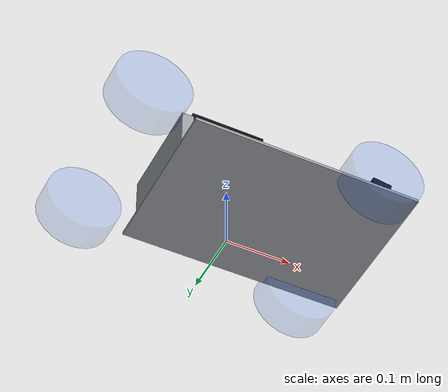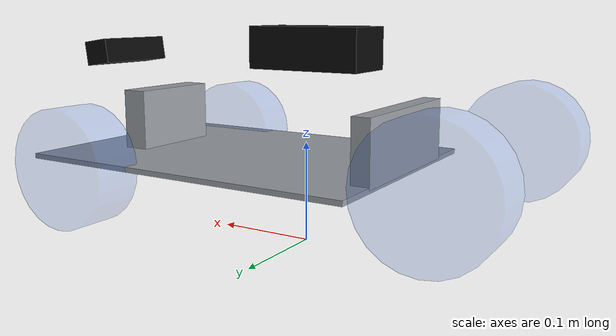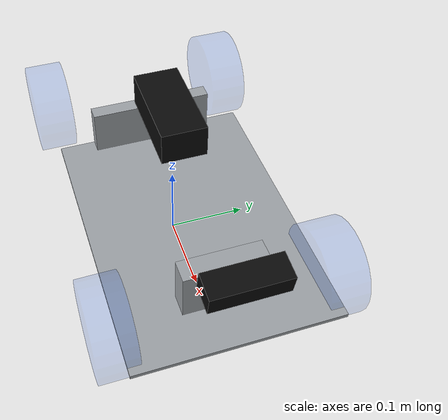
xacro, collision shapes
<?xml version="1.0"?>
<robot xmlns:xacro="http://www.ros.org/wiki/xacro" name="lunshi_chassis">

  <!-- Generated Xacro source. Final URDF is produced by xacro before robot_state_publisher / RViz / Gazebo. -->
  <xacro:arg name="use_gazebo" default="false"/>
  <xacro:arg name="use_gazebo_classic" default="false"/>
  <xacro:arg name="sim_controller_config" default=""/>

  <!-- Geometry measured from the user's current chassis URDF / meshes. Units: m, rad. -->
  <xacro:property name="wheelbase" value="0.362295943"/>
  <xacro:property name="steering_track_width" value="0.264956799"/>
  <xacro:property name="traction_track_width" value="0.245400019"/>
  <xacro:property name="wheel_radius" value="0.058528263"/>

  <!-- SLAMTEC RPLIDAR S3 simulation parameters from the user-provided datasheet. -->
  <xacro:property name="s3_update_rate" value="10"/>
  <xacro:property name="s3_samples" value="3200"/>
  <xacro:property name="s3_min_angle" value="-3.141592653589793"/>
  <xacro:property name="s3_max_angle" value="3.141592653589793"/>
  <xacro:property name="s3_min_range" value="0.05"/>
  <xacro:property name="s3_max_range" value="40.0"/>
  <xacro:property name="s3_range_resolution" value="0.01"/>
  <xacro:property name="s3_noise_stddev" value="0.025"/>

  <!-- HIKROBOT MV-DT01SDU simulation parameters from the user-provided datasheet. -->
  <xacro:property name="mv_depth_hfov" value="1.117010721276"/>
  <xacro:property name="mv_rgb_hfov" value="1.291543646476"/>
  <xacro:property name="mv_depth_width" value="640"/>
  <xacro:property name="mv_depth_height" value="480"/>
  <xacro:property name="mv_rgb_width" value="1536"/>
  <xacro:property name="mv_rgb_height" value="1280"/>
  <xacro:property name="mv_update_rate" value="30"/>
  <xacro:property name="mv_near" value="0.30"/>
  <xacro:property name="mv_far" value="3.50"/>

  <xacro:include filename="$(find omnifleet_a2_description)/urdf/gazebo_sensors.gazebo.xacro"/>
  <xacro:include filename="$(find omnifleet_a2_description)/urdf/gazebo_classic.gazebo.xacro"/>

  <material name="sensor_lens">
    <color rgba="0.0 0.0 0.0 1" />
  </material>
  <material name="sensor_dark">
    <color rgba="0.04 0.04 0.04 1" />
  </material>
  <material name="steering_link_material">
    <color rgba="0.12 0.12 0.12 1" />
  </material>
  <material name="mesh_default">
    <color rgba="0.62 0.64 0.66 1" />
  </material>
  <material name="wheel_black">
    <color rgba="0.02 0.02 0.02 1" />
  </material>
  <material name="wheel_global_ref">
    <color rgba="0.1 0.35 0.9 0.18" />
  </material>
  <link name="base_footprint" />
  <link name="imu_link" />
  <link name="base_link">
    <inertial>
      <origin xyz="0 0 0" rpy="0 0 0" />
      <mass value="4" />
      <inertia ixx="0.0206753333" ixy="0" ixz="0" iyy="0.0426104167" iyz="0" izz="0.0632690833" />
    </inertial>
    <collision name="base_plate">
      <origin xyz="0.0704405689 5.86852988e-08 0.023028263" rpy="0 0 0" />
      <geometry>
        <box size="0.3575 0.249 0.005" />
      </geometry>
    </collision>
    <collision name="rear_body">
      <origin xyz="-0.0993094311 5.86852988e-08 0.0535289029" rpy="0 0 0" />
      <geometry>
        <box size="0.0180068392 0.156002508 0.0610055594" />
      </geometry>
    </collision>
    <collision name="front_body">
      <origin xyz="0.181190569 5.8685295e-08 0.0550284244" rpy="0 0 0" />
      <geometry>
        <box size="0.0270002062 0.100000852 0.0640005289" />
      </geometry>
    </collision>
    <visual name="sw_part_001_3633009ae9">
      <origin xyz="0 0 0" rpy="0 0 0" />
      <geometry>
        <mesh filename="package://omnifleet_a2_description/meshes/sw_visual/sw_part_001_3633009ae9.stl" />
      </geometry>
      <material name="mesh_default" />
    </visual>
    <visual name="sw_part_002_e78aa04ea8">
      <origin xyz="0 0 0" rpy="0 0 0" />
      <geometry>
        <mesh filename="package://omnifleet_a2_description/meshes/sw_visual/sw_part_002_e78aa04ea8.stl" />
      </geometry>
      <material name="mesh_default" />
    </visual>
    <visual name="sw_part_003_7093eddc6d">
      <origin xyz="0 0 0" rpy="0 0 0" />
      <geometry>
        <mesh filename="package://omnifleet_a2_description/meshes/sw_visual/sw_part_003_7093eddc6d.stl" />
      </geometry>
      <material name="mesh_default" />
    </visual>
    <visual name="sw_part_004_13395ffafe">
      <origin xyz="0 0 0" rpy="0 0 0" />
      <geometry>
        <mesh filename="package://omnifleet_a2_description/meshes/sw_visual/sw_part_004_13395ffafe.stl" />
      </geometry>
      <material name="mesh_default" />
    </visual>
    <visual name="sw_part_005_8bcc7fc08d">
      <origin xyz="0 0 0" rpy="0 0 0" />
      <geometry>
        <mesh filename="package://omnifleet_a2_description/meshes/sw_visual/sw_part_005_8bcc7fc08d.stl" />
      </geometry>
      <material name="mesh_default" />
    </visual>
    <visual name="sw_part_006_0436e3fb28">
      <origin xyz="0 0 0" rpy="0 0 0" />
      <geometry>
        <mesh filename="package://omnifleet_a2_description/meshes/sw_visual/sw_part_006_0436e3fb28.stl" />
      </geometry>
      <material name="mesh_default" />
    </visual>
    <visual name="sw_part_007_d973dab162">
      <origin xyz="0 0 0" rpy="0 0 0" />
      <geometry>
        <mesh filename="package://omnifleet_a2_description/meshes/sw_visual/sw_part_007_d973dab162.stl" />
      </geometry>
      <material name="mesh_default" />
    </visual>
    <visual name="sw_part_008_93bc5c7974">
      <origin xyz="0 0 0" rpy="0 0 0" />
      <geometry>
        <mesh filename="package://omnifleet_a2_description/meshes/sw_visual/sw_part_008_93bc5c7974.stl" />
      </geometry>
      <material name="mesh_default" />
    </visual>
    <visual name="sw_part_009_bf2929afc5">
      <origin xyz="0 0 0" rpy="0 0 0" />
      <geometry>
        <mesh filename="package://omnifleet_a2_description/meshes/sw_visual/sw_part_009_bf2929afc5.stl" />
      </geometry>
      <material name="mesh_default" />
    </visual>
    <visual name="sw_part_010_53321976d9">
      <origin xyz="0 0 0" rpy="0 0 0" />
      <geometry>
        <mesh filename="package://omnifleet_a2_description/meshes/sw_visual/sw_part_010_53321976d9.stl" />
      </geometry>
      <material name="mesh_default" />
    </visual>
    <visual name="sw_part_011_256aa68fd6">
      <origin xyz="0 0 0" rpy="0 0 0" />
      <geometry>
        <mesh filename="package://omnifleet_a2_description/meshes/sw_visual/sw_part_011_256aa68fd6.stl" />
      </geometry>
      <material name="mesh_default" />
    </visual>
    <visual name="sw_part_012_aa55bd141e">
      <origin xyz="0 0 0" rpy="0 0 0" />
      <geometry>
        <mesh filename="package://omnifleet_a2_description/meshes/sw_visual/sw_part_012_aa55bd141e.stl" />
      </geometry>
      <material name="mesh_default" />
    </visual>
    <visual name="sw_part_013_17aef547ed">
      <origin xyz="0 0 0" rpy="0 0 0" />
      <geometry>
        <mesh filename="package://omnifleet_a2_description/meshes/sw_visual/sw_part_013_17aef547ed.stl" />
      </geometry>
      <material name="mesh_default" />
    </visual>
    <visual name="sw_part_014_9eefcaee3f">
      <origin xyz="0 0 0" rpy="0 0 0" />
      <geometry>
        <mesh filename="package://omnifleet_a2_description/meshes/sw_visual/sw_part_014_9eefcaee3f.stl" />
      </geometry>
      <material name="mesh_default" />
    </visual>
    <visual name="sw_part_015_72abcd5d28">
      <origin xyz="0 0 0" rpy="0 0 0" />
      <geometry>
        <mesh filename="package://omnifleet_a2_description/meshes/sw_visual/sw_part_015_72abcd5d28.stl" />
      </geometry>
      <material name="mesh_default" />
    </visual>
    <visual name="sw_part_016_9368eccf78">
      <origin xyz="0 0 0" rpy="0 0 0" />
      <geometry>
        <mesh filename="package://omnifleet_a2_description/meshes/sw_visual/sw_part_016_9368eccf78.stl" />
      </geometry>
      <material name="mesh_default" />
    </visual>
    <visual name="sw_part_017_61eb6a460b">
      <origin xyz="0 0 0" rpy="0 0 0" />
      <geometry>
        <mesh filename="package://omnifleet_a2_description/meshes/sw_visual/sw_part_017_61eb6a460b.stl" />
      </geometry>
      <material name="mesh_default" />
    </visual>
    <visual name="sw_part_018_815a708bf5">
      <origin xyz="0 0 0" rpy="0 0 0" />
      <geometry>
        <mesh filename="package://omnifleet_a2_description/meshes/sw_visual/sw_part_018_815a708bf5.stl" />
      </geometry>
      <material name="mesh_default" />
    </visual>
    <visual name="sw_part_019_9910a8fb2c">
      <origin xyz="0 0 0" rpy="0 0 0" />
      <geometry>
        <mesh filename="package://omnifleet_a2_description/meshes/sw_visual/sw_part_019_9910a8fb2c.stl" />
      </geometry>
      <material name="mesh_default" />
    </visual>
    <visual name="sw_part_020_aae9db7bbc">
      <origin xyz="0 0 0" rpy="0 0 0" />
      <geometry>
        <mesh filename="package://omnifleet_a2_description/meshes/sw_visual/sw_part_020_aae9db7bbc.stl" />
      </geometry>
      <material name="mesh_default" />
    </visual>
    <visual name="sw_part_021_a5becf8b4b">
      <origin xyz="0 0 0" rpy="0 0 0" />
      <geometry>
        <mesh filename="package://omnifleet_a2_description/meshes/sw_visual/sw_part_021_a5becf8b4b.stl" />
      </geometry>
      <material name="mesh_default" />
    </visual>
    <visual name="sw_part_022_ebe636baef">
      <origin xyz="0 0 0" rpy="0 0 0" />
      <geometry>
        <mesh filename="package://omnifleet_a2_description/meshes/sw_visual/sw_part_022_ebe636baef.stl" />
      </geometry>
      <material name="mesh_default" />
    </visual>
    <visual name="sw_part_023_b2d48b0e61">
      <origin xyz="0 0 0" rpy="0 0 0" />
      <geometry>
        <mesh filename="package://omnifleet_a2_description/meshes/sw_visual/sw_part_023_b2d48b0e61.stl" />
      </geometry>
      <material name="mesh_default" />
    </visual>
    <visual name="sw_part_024_337649c364">
      <origin xyz="0 0 0" rpy="0 0 0" />
      <geometry>
        <mesh filename="package://omnifleet_a2_description/meshes/sw_visual/sw_part_024_337649c364.stl" />
      </geometry>
      <material name="mesh_default" />
    </visual>
    <visual name="sw_part_025_b188110bb0">
      <origin xyz="0 0 0" rpy="0 0 0" />
      <geometry>
        <mesh filename="package://omnifleet_a2_description/meshes/sw_visual/sw_part_025_b188110bb0.stl" />
      </geometry>
      <material name="mesh_default" />
    </visual>
    <visual name="sw_part_026_1409ff7399">
      <origin xyz="0 0 0" rpy="0 0 0" />
      <geometry>
        <mesh filename="package://omnifleet_a2_description/meshes/sw_visual/sw_part_026_1409ff7399.stl" />
      </geometry>
      <material name="mesh_default" />
    </visual>
    <visual name="sw_part_027_155776a776">
      <origin xyz="0 0 0" rpy="0 0 0" />
      <geometry>
        <mesh filename="package://omnifleet_a2_description/meshes/sw_visual/sw_part_027_155776a776.stl" />
      </geometry>
      <material name="mesh_default" />
    </visual>
    <visual name="sw_part_028_71e5d6d001">
      <origin xyz="0 0 0" rpy="0 0 0" />
      <geometry>
        <mesh filename="package://omnifleet_a2_description/meshes/sw_visual/sw_part_028_71e5d6d001.stl" />
      </geometry>
      <material name="mesh_default" />
    </visual>
    <visual name="sw_part_029_1eaf383dc2">
      <origin xyz="0 0 0" rpy="0 0 0" />
      <geometry>
        <mesh filename="package://omnifleet_a2_description/meshes/sw_visual/sw_part_029_1eaf383dc2.stl" />
      </geometry>
      <material name="mesh_default" />
    </visual>
    <visual name="sw_part_030_aa3c489f27">
      <origin xyz="0 0 0" rpy="0 0 0" />
      <geometry>
        <mesh filename="package://omnifleet_a2_description/meshes/sw_visual/sw_part_030_aa3c489f27.stl" />
      </geometry>
      <material name="mesh_default" />
    </visual>
    <visual name="sw_part_031_46ed68528e">
      <origin xyz="0 0 0" rpy="0 0 0" />
      <geometry>
        <mesh filename="package://omnifleet_a2_description/meshes/sw_visual/sw_part_031_46ed68528e.stl" />
      </geometry>
      <material name="mesh_default" />
    </visual>
    <visual name="sw_part_032_419e96348e">
      <origin xyz="0 0 0" rpy="0 0 0" />
      <geometry>
        <mesh filename="package://omnifleet_a2_description/meshes/sw_visual/sw_part_032_419e96348e.stl" />
      </geometry>
      <material name="mesh_default" />
    </visual>
    <visual name="sw_part_033_02904175a3">
      <origin xyz="0 0 0" rpy="0 0 0" />
      <geometry>
        <mesh filename="package://omnifleet_a2_description/meshes/sw_visual/sw_part_033_02904175a3.stl" />
      </geometry>
      <material name="mesh_default" />
    </visual>
    <visual name="sw_part_034_92e8e3e31d">
      <origin xyz="0 0 0" rpy="0 0 0" />
      <geometry>
        <mesh filename="package://omnifleet_a2_description/meshes/sw_visual/sw_part_034_92e8e3e31d.stl" />
      </geometry>
      <material name="mesh_default" />
    </visual>
    <visual name="sw_part_035_3c44a1765f">
      <origin xyz="0 0 0" rpy="0 0 0" />
      <geometry>
        <mesh filename="package://omnifleet_a2_description/meshes/sw_visual/sw_part_035_3c44a1765f.stl" />
      </geometry>
      <material name="mesh_default" />
    </visual>
    <visual name="sw_part_036_5fac2b219a">
      <origin xyz="0 0 0" rpy="0 0 0" />
      <geometry>
        <mesh filename="package://omnifleet_a2_description/meshes/sw_visual/sw_part_036_5fac2b219a.stl" />
      </geometry>
      <material name="mesh_default" />
    </visual>
    <visual name="sw_part_037_e28a596db6">
      <origin xyz="0 0 0" rpy="0 0 0" />
      <geometry>
        <mesh filename="package://omnifleet_a2_description/meshes/sw_visual/sw_part_037_e28a596db6.stl" />
      </geometry>
      <material name="mesh_default" />
    </visual>
    <visual name="sw_part_038_6dec9e4d2a">
      <origin xyz="0 0 0" rpy="0 0 0" />
      <geometry>
        <mesh filename="package://omnifleet_a2_description/meshes/sw_visual/sw_part_038_6dec9e4d2a.stl" />
      </geometry>
      <material name="mesh_default" />
    </visual>
    <visual name="sw_part_039_8f85688579">
      <origin xyz="0 0 0" rpy="0 0 0" />
      <geometry>
        <mesh filename="package://omnifleet_a2_description/meshes/sw_visual/sw_part_039_8f85688579.stl" />
      </geometry>
      <material name="mesh_default" />
    </visual>
    <visual name="sw_part_040_08e9188483">
      <origin xyz="0 0 0" rpy="0 0 0" />
      <geometry>
        <mesh filename="package://omnifleet_a2_description/meshes/sw_visual/sw_part_040_08e9188483.stl" />
      </geometry>
      <material name="mesh_default" />
    </visual>
    <visual name="sw_part_041_eff6a963a1">
      <origin xyz="0 0 0" rpy="0 0 0" />
      <geometry>
        <mesh filename="package://omnifleet_a2_description/meshes/sw_visual/sw_part_041_eff6a963a1.stl" />
      </geometry>
      <material name="mesh_default" />
    </visual>
    <visual name="sw_part_042_4d64970562">
      <origin xyz="0 0 0" rpy="0 0 0" />
      <geometry>
        <mesh filename="package://omnifleet_a2_description/meshes/sw_visual/sw_part_042_4d64970562.stl" />
      </geometry>
      <material name="mesh_default" />
    </visual>
    <visual name="sw_part_043_210c324f57">
      <origin xyz="0 0 0" rpy="0 0 0" />
      <geometry>
        <mesh filename="package://omnifleet_a2_description/meshes/sw_visual/sw_part_043_210c324f57.stl" />
      </geometry>
      <material name="mesh_default" />
    </visual>
    <visual name="sw_part_044_414139380e">
      <origin xyz="0 0 0" rpy="0 0 0" />
      <geometry>
        <mesh filename="package://omnifleet_a2_description/meshes/sw_visual/sw_part_044_414139380e.stl" />
      </geometry>
      <material name="mesh_default" />
    </visual>
    <visual name="sw_part_045_497b2b4815">
      <origin xyz="0 0 0" rpy="0 0 0" />
      <geometry>
        <mesh filename="package://omnifleet_a2_description/meshes/sw_visual/sw_part_045_497b2b4815.stl" />
      </geometry>
      <material name="mesh_default" />
    </visual>
    <visual name="sw_part_046_e3333587eb">
      <origin xyz="0 0 0" rpy="0 0 0" />
      <geometry>
        <mesh filename="package://omnifleet_a2_description/meshes/sw_visual/sw_part_046_e3333587eb.stl" />
      </geometry>
      <material name="mesh_default" />
    </visual>
    <visual name="sw_part_047_cb0820ef77">
      <origin xyz="0 0 0" rpy="0 0 0" />
      <geometry>
        <mesh filename="package://omnifleet_a2_description/meshes/sw_visual/sw_part_047_cb0820ef77.stl" />
      </geometry>
      <material name="mesh_default" />
    </visual>
    <visual name="sw_part_048_b15e918a37">
      <origin xyz="0 0 0" rpy="0 0 0" />
      <geometry>
        <mesh filename="package://omnifleet_a2_description/meshes/sw_visual/sw_part_048_b15e918a37.stl" />
      </geometry>
      <material name="mesh_default" />
    </visual>
    <visual name="sw_part_049_54856056a7">
      <origin xyz="0 0 0" rpy="0 0 0" />
      <geometry>
        <mesh filename="package://omnifleet_a2_description/meshes/sw_visual/sw_part_049_54856056a7.stl" />
      </geometry>
      <material name="mesh_default" />
    </visual>
    <visual name="sw_part_050_4c418e1331">
      <origin xyz="0 0 0" rpy="0 0 0" />
      <geometry>
        <mesh filename="package://omnifleet_a2_description/meshes/sw_visual/sw_part_050_4c418e1331.stl" />
      </geometry>
      <material name="mesh_default" />
    </visual>
    <visual name="sw_part_051_59924a821f">
      <origin xyz="0 0 0" rpy="0 0 0" />
      <geometry>
        <mesh filename="package://omnifleet_a2_description/meshes/sw_visual/sw_part_051_59924a821f.stl" />
      </geometry>
      <material name="mesh_default" />
    </visual>
    <visual name="sw_part_052_315692d405">
      <origin xyz="0 0 0" rpy="0 0 0" />
      <geometry>
        <mesh filename="package://omnifleet_a2_description/meshes/sw_visual/sw_part_052_315692d405.stl" />
      </geometry>
      <material name="mesh_default" />
    </visual>
    <visual name="sw_part_053_1427eadb00">
      <origin xyz="0 0 0" rpy="0 0 0" />
      <geometry>
        <mesh filename="package://omnifleet_a2_description/meshes/sw_visual/sw_part_053_1427eadb00.stl" />
      </geometry>
      <material name="mesh_default" />
    </visual>
    <visual name="sw_part_054_bb60f7b185">
      <origin xyz="0 0 0" rpy="0 0 0" />
      <geometry>
        <mesh filename="package://omnifleet_a2_description/meshes/sw_visual/sw_part_054_bb60f7b185.stl" />
      </geometry>
      <material name="mesh_default" />
    </visual>
    <visual name="sw_part_055_ee13952fb0">
      <origin xyz="0 0 0" rpy="0 0 0" />
      <geometry>
        <mesh filename="package://omnifleet_a2_description/meshes/sw_visual/sw_part_055_ee13952fb0.stl" />
      </geometry>
      <material name="mesh_default" />
    </visual>
    <visual name="sw_part_056_dd8379ab7c">
      <origin xyz="0 0 0" rpy="0 0 0" />
      <geometry>
        <mesh filename="package://omnifleet_a2_description/meshes/sw_visual/sw_part_056_dd8379ab7c.stl" />
      </geometry>
      <material name="mesh_default" />
    </visual>
    <visual name="sw_part_057_75450c2ac9">
      <origin xyz="0 0 0" rpy="0 0 0" />
      <geometry>
        <mesh filename="package://omnifleet_a2_description/meshes/sw_visual/sw_part_057_75450c2ac9.stl" />
      </geometry>
      <material name="mesh_default" />
    </visual>
    <visual name="sw_part_058_241afe2013">
      <origin xyz="0 0 0" rpy="0 0 0" />
      <geometry>
        <mesh filename="package://omnifleet_a2_description/meshes/sw_visual/sw_part_058_241afe2013.stl" />
      </geometry>
      <material name="mesh_default" />
    </visual>
    <visual name="sw_part_059_b378922962">
      <origin xyz="0 0 0" rpy="0 0 0" />
      <geometry>
        <mesh filename="package://omnifleet_a2_description/meshes/sw_visual/sw_part_059_b378922962.stl" />
      </geometry>
      <material name="mesh_default" />
    </visual>
    <visual name="sw_part_060_a1836be0ab">
      <origin xyz="0 0 0" rpy="0 0 0" />
      <geometry>
        <mesh filename="package://omnifleet_a2_description/meshes/sw_visual/sw_part_060_a1836be0ab.stl" />
      </geometry>
      <material name="mesh_default" />
    </visual>
    <visual name="sw_part_061_875163776c">
      <origin xyz="0 0 0" rpy="0 0 0" />
      <geometry>
        <mesh filename="package://omnifleet_a2_description/meshes/sw_visual/sw_part_061_875163776c.stl" />
      </geometry>
      <material name="mesh_default" />
    </visual>
    <visual name="sw_part_062_95bc4b61c2">
      <origin xyz="0 0 0" rpy="0 0 0" />
      <geometry>
        <mesh filename="package://omnifleet_a2_description/meshes/sw_visual/sw_part_062_95bc4b61c2.stl" />
      </geometry>
      <material name="mesh_default" />
    </visual>
    <visual name="sw_part_063_5e6e8604b6">
      <origin xyz="0 0 0" rpy="0 0 0" />
      <geometry>
        <mesh filename="package://omnifleet_a2_description/meshes/sw_visual/sw_part_063_5e6e8604b6.stl" />
      </geometry>
      <material name="mesh_default" />
    </visual>
    <visual name="sw_part_064_b797b5864f">
      <origin xyz="0 0 0" rpy="0 0 0" />
      <geometry>
        <mesh filename="package://omnifleet_a2_description/meshes/sw_visual/sw_part_064_b797b5864f.stl" />
      </geometry>
      <material name="mesh_default" />
    </visual>
    <visual name="sw_part_065_b9dfb744ae">
      <origin xyz="0 0 0" rpy="0 0 0" />
      <geometry>
        <mesh filename="package://omnifleet_a2_description/meshes/sw_visual/sw_part_065_b9dfb744ae.stl" />
      </geometry>
      <material name="mesh_default" />
    </visual>
    <visual name="sw_part_066_f90ceb3043">
      <origin xyz="0 0 0" rpy="0 0 0" />
      <geometry>
        <mesh filename="package://omnifleet_a2_description/meshes/sw_visual/sw_part_066_f90ceb3043.stl" />
      </geometry>
      <material name="mesh_default" />
    </visual>
    <visual name="sw_part_067_4960ed1dfe">
      <origin xyz="0 0 0" rpy="0 0 0" />
      <geometry>
        <mesh filename="package://omnifleet_a2_description/meshes/sw_visual/sw_part_067_4960ed1dfe.stl" />
      </geometry>
      <material name="mesh_default" />
    </visual>
    <visual name="sw_part_068_494e96827b">
      <origin xyz="0 0 0" rpy="0 0 0" />
      <geometry>
        <mesh filename="package://omnifleet_a2_description/meshes/sw_visual/sw_part_068_494e96827b.stl" />
      </geometry>
      <material name="mesh_default" />
    </visual>
    <visual name="sw_part_069_e01440c7e6">
      <origin xyz="0 0 0" rpy="0 0 0" />
      <geometry>
        <mesh filename="package://omnifleet_a2_description/meshes/sw_visual/sw_part_069_e01440c7e6.stl" />
      </geometry>
      <material name="mesh_default" />
    </visual>
    <visual name="sw_part_070_9790d972c8">
      <origin xyz="0 0 0" rpy="0 0 0" />
      <geometry>
        <mesh filename="package://omnifleet_a2_description/meshes/sw_visual/sw_part_070_9790d972c8.stl" />
      </geometry>
      <material name="mesh_default" />
    </visual>
    <visual name="sw_part_071_3946ce0f16">
      <origin xyz="0 0 0" rpy="0 0 0" />
      <geometry>
        <mesh filename="package://omnifleet_a2_description/meshes/sw_visual/sw_part_071_3946ce0f16.stl" />
      </geometry>
      <material name="mesh_default" />
    </visual>
    <visual name="sw_part_072_f00236c269">
      <origin xyz="0 0 0" rpy="0 0 0" />
      <geometry>
        <mesh filename="package://omnifleet_a2_description/meshes/sw_visual/sw_part_072_f00236c269.stl" />
      </geometry>
      <material name="mesh_default" />
    </visual>
    <visual name="sw_part_073_f65041677a">
      <origin xyz="0 0 0" rpy="0 0 0" />
      <geometry>
        <mesh filename="package://omnifleet_a2_description/meshes/sw_visual/sw_part_073_f65041677a.stl" />
      </geometry>
      <material name="mesh_default" />
    </visual>
    <visual name="sw_part_074_99cca69f99">
      <origin xyz="0 0 0" rpy="0 0 0" />
      <geometry>
        <mesh filename="package://omnifleet_a2_description/meshes/sw_visual/sw_part_074_99cca69f99.stl" />
      </geometry>
      <material name="mesh_default" />
    </visual>
    <visual name="sw_part_075_c6fb581a2e">
      <origin xyz="0 0 0" rpy="0 0 0" />
      <geometry>
        <mesh filename="package://omnifleet_a2_description/meshes/sw_visual/sw_part_075_c6fb581a2e.stl" />
      </geometry>
      <material name="mesh_default" />
    </visual>
    <visual name="sw_part_076_2ef7cbc025">
      <origin xyz="0 0 0" rpy="0 0 0" />
      <geometry>
        <mesh filename="package://omnifleet_a2_description/meshes/sw_visual/sw_part_076_2ef7cbc025.stl" />
      </geometry>
      <material name="mesh_default" />
    </visual>
    <visual name="sw_part_077_8ab4f19a9f">
      <origin xyz="0 0 0" rpy="0 0 0" />
      <geometry>
        <mesh filename="package://omnifleet_a2_description/meshes/sw_visual/sw_part_077_8ab4f19a9f.stl" />
      </geometry>
      <material name="mesh_default" />
    </visual>
    <visual name="sw_part_078_f29b3855cc">
      <origin xyz="0 0 0" rpy="0 0 0" />
      <geometry>
        <mesh filename="package://omnifleet_a2_description/meshes/sw_visual/sw_part_078_f29b3855cc.stl" />
      </geometry>
      <material name="mesh_default" />
    </visual>
    <visual name="sw_part_079_50338ffdfe">
      <origin xyz="0 0 0" rpy="0 0 0" />
      <geometry>
        <mesh filename="package://omnifleet_a2_description/meshes/sw_visual/sw_part_079_50338ffdfe.stl" />
      </geometry>
      <material name="mesh_default" />
    </visual>
    <visual name="sw_part_080_3dd1e5d638">
      <origin xyz="0 0 0" rpy="0 0 0" />
      <geometry>
        <mesh filename="package://omnifleet_a2_description/meshes/sw_visual/sw_part_080_3dd1e5d638.stl" />
      </geometry>
      <material name="mesh_default" />
    </visual>
    <visual name="sw_part_081_e386a33bcf">
      <origin xyz="0 0 0" rpy="0 0 0" />
      <geometry>
        <mesh filename="package://omnifleet_a2_description/meshes/sw_visual/sw_part_081_e386a33bcf.stl" />
      </geometry>
      <material name="mesh_default" />
    </visual>
    <visual name="sw_part_082_7344fba58f">
      <origin xyz="0 0 0" rpy="0 0 0" />
      <geometry>
        <mesh filename="package://omnifleet_a2_description/meshes/sw_visual/sw_part_082_7344fba58f.stl" />
      </geometry>
      <material name="mesh_default" />
    </visual>
    <visual name="sw_part_083_baebf5504c">
      <origin xyz="0 0 0" rpy="0 0 0" />
      <geometry>
        <mesh filename="package://omnifleet_a2_description/meshes/sw_visual/sw_part_083_baebf5504c.stl" />
      </geometry>
      <material name="mesh_default" />
    </visual>
    <visual name="sw_part_084_9f5cd90b97">
      <origin xyz="0 0 0" rpy="0 0 0" />
      <geometry>
        <mesh filename="package://omnifleet_a2_description/meshes/sw_visual/sw_part_084_9f5cd90b97.stl" />
      </geometry>
      <material name="mesh_default" />
    </visual>
    <visual name="sw_part_085_0f0495f53f">
      <origin xyz="0 0 0" rpy="0 0 0" />
      <geometry>
        <mesh filename="package://omnifleet_a2_description/meshes/sw_visual/sw_part_085_0f0495f53f.stl" />
      </geometry>
      <material name="mesh_default" />
    </visual>
    <visual name="sw_part_086_98dd27a233">
      <origin xyz="0 0 0" rpy="0 0 0" />
      <geometry>
        <mesh filename="package://omnifleet_a2_description/meshes/sw_visual/sw_part_086_98dd27a233.stl" />
      </geometry>
      <material name="mesh_default" />
    </visual>
    <visual name="sw_part_087_3a09e0b472">
      <origin xyz="0 0 0" rpy="0 0 0" />
      <geometry>
        <mesh filename="package://omnifleet_a2_description/meshes/sw_visual/sw_part_087_3a09e0b472.stl" />
      </geometry>
      <material name="mesh_default" />
    </visual>
    <visual name="sw_part_088_a925b230d2">
      <origin xyz="0 0 0" rpy="0 0 0" />
      <geometry>
        <mesh filename="package://omnifleet_a2_description/meshes/sw_visual/sw_part_088_a925b230d2.stl" />
      </geometry>
      <material name="mesh_default" />
    </visual>
    <visual name="sw_part_089_ffaa3a32e0">
      <origin xyz="0 0 0" rpy="0 0 0" />
      <geometry>
        <mesh filename="package://omnifleet_a2_description/meshes/sw_visual/sw_part_089_ffaa3a32e0.stl" />
      </geometry>
      <material name="mesh_default" />
    </visual>
    <visual name="sw_part_090_554b1ba990">
      <origin xyz="0 0 0" rpy="0 0 0" />
      <geometry>
        <mesh filename="package://omnifleet_a2_description/meshes/sw_visual/sw_part_090_554b1ba990.stl" />
      </geometry>
      <material name="mesh_default" />
    </visual>
    <visual name="sw_part_091_6e132a8fcd">
      <origin xyz="0 0 0" rpy="0 0 0" />
      <geometry>
        <mesh filename="package://omnifleet_a2_description/meshes/sw_visual/sw_part_091_6e132a8fcd.stl" />
      </geometry>
      <material name="mesh_default" />
    </visual>
    <visual name="sw_part_092_a2ff41fbee">
      <origin xyz="0 0 0" rpy="0 0 0" />
      <geometry>
        <mesh filename="package://omnifleet_a2_description/meshes/sw_visual/sw_part_092_a2ff41fbee.stl" />
      </geometry>
      <material name="mesh_default" />
    </visual>
    <visual name="sw_part_093_ebd61c1eda">
      <origin xyz="0 0 0" rpy="0 0 0" />
      <geometry>
        <mesh filename="package://omnifleet_a2_description/meshes/sw_visual/sw_part_093_ebd61c1eda.stl" />
      </geometry>
      <material name="mesh_default" />
    </visual>
    <visual name="sw_part_094_2040a775ee">
      <origin xyz="0 0 0" rpy="0 0 0" />
      <geometry>
        <mesh filename="package://omnifleet_a2_description/meshes/sw_visual/sw_part_094_2040a775ee.stl" />
      </geometry>
      <material name="mesh_default" />
    </visual>
    <visual name="sw_part_095_c2a6eb4d35">
      <origin xyz="0 0 0" rpy="0 0 0" />
      <geometry>
        <mesh filename="package://omnifleet_a2_description/meshes/sw_visual/sw_part_095_c2a6eb4d35.stl" />
      </geometry>
      <material name="mesh_default" />
    </visual>
    <visual name="sw_part_096_ba34ec172e">
      <origin xyz="0 0 0" rpy="0 0 0" />
      <geometry>
        <mesh filename="package://omnifleet_a2_description/meshes/sw_visual/sw_part_096_ba34ec172e.stl" />
      </geometry>
      <material name="mesh_default" />
    </visual>
    <visual name="sw_part_097_5483977b10">
      <origin xyz="0 0 0" rpy="0 0 0" />
      <geometry>
        <mesh filename="package://omnifleet_a2_description/meshes/sw_visual/sw_part_097_5483977b10.stl" />
      </geometry>
      <material name="mesh_default" />
    </visual>
    <visual name="sw_part_098_61af5a340a">
      <origin xyz="0 0 0" rpy="0 0 0" />
      <geometry>
        <mesh filename="package://omnifleet_a2_description/meshes/sw_visual/sw_part_098_61af5a340a.stl" />
      </geometry>
      <material name="mesh_default" />
    </visual>
    <visual name="sw_part_099_4a2af07b31">
      <origin xyz="0 0 0" rpy="0 0 0" />
      <geometry>
        <mesh filename="package://omnifleet_a2_description/meshes/sw_visual/sw_part_099_4a2af07b31.stl" />
      </geometry>
      <material name="mesh_default" />
    </visual>
    <visual name="sw_part_100_c18da94fe0">
      <origin xyz="0 0 0" rpy="0 0 0" />
      <geometry>
        <mesh filename="package://omnifleet_a2_description/meshes/sw_visual/sw_part_100_c18da94fe0.stl" />
      </geometry>
      <material name="mesh_default" />
    </visual>
    <visual name="sw_part_101_bf43f77761">
      <origin xyz="0 0 0" rpy="0 0 0" />
      <geometry>
        <mesh filename="package://omnifleet_a2_description/meshes/sw_visual/sw_part_101_bf43f77761.stl" />
      </geometry>
      <material name="mesh_default" />
    </visual>
    <visual name="sw_part_102_0da7334ee2">
      <origin xyz="0 0 0" rpy="0 0 0" />
      <geometry>
        <mesh filename="package://omnifleet_a2_description/meshes/sw_visual/sw_part_102_0da7334ee2.stl" />
      </geometry>
      <material name="mesh_default" />
    </visual>
    <visual name="sw_part_103_0385f5ca04">
      <origin xyz="0 0 0" rpy="0 0 0" />
      <geometry>
        <mesh filename="package://omnifleet_a2_description/meshes/sw_visual/sw_part_103_0385f5ca04.stl" />
      </geometry>
      <material name="mesh_default" />
    </visual>
    <visual name="sw_part_104_8ba5002a07">
      <origin xyz="0 0 0" rpy="0 0 0" />
      <geometry>
        <mesh filename="package://omnifleet_a2_description/meshes/sw_visual/sw_part_104_8ba5002a07.stl" />
      </geometry>
      <material name="mesh_default" />
    </visual>
    <visual name="sw_part_105_13c55a0a99">
      <origin xyz="0 0 0" rpy="0 0 0" />
      <geometry>
        <mesh filename="package://omnifleet_a2_description/meshes/sw_visual/sw_part_105_13c55a0a99.stl" />
      </geometry>
      <material name="mesh_default" />
    </visual>
    <visual name="sw_part_106_3dbe6b2f31">
      <origin xyz="0 0 0" rpy="0 0 0" />
      <geometry>
        <mesh filename="package://omnifleet_a2_description/meshes/sw_visual/sw_part_106_3dbe6b2f31.stl" />
      </geometry>
      <material name="mesh_default" />
    </visual>
    <visual name="sw_part_107_db2979320c">
      <origin xyz="0 0 0" rpy="0 0 0" />
      <geometry>
        <mesh filename="package://omnifleet_a2_description/meshes/sw_visual/sw_part_107_db2979320c.stl" />
      </geometry>
      <material name="mesh_default" />
    </visual>
    <visual name="sw_part_108_3d23ddd0d0">
      <origin xyz="0 0 0" rpy="0 0 0" />
      <geometry>
        <mesh filename="package://omnifleet_a2_description/meshes/sw_visual/sw_part_108_3d23ddd0d0.stl" />
      </geometry>
      <material name="mesh_default" />
    </visual>
    <visual name="sw_part_109_6de6e25646">
      <origin xyz="0 0 0" rpy="0 0 0" />
      <geometry>
        <mesh filename="package://omnifleet_a2_description/meshes/sw_visual/sw_part_109_6de6e25646.stl" />
      </geometry>
      <material name="mesh_default" />
    </visual>
    <visual name="sw_part_110_46de95b063">
      <origin xyz="0 0 0" rpy="0 0 0" />
      <geometry>
        <mesh filename="package://omnifleet_a2_description/meshes/sw_visual/sw_part_110_46de95b063.stl" />
      </geometry>
      <material name="mesh_default" />
    </visual>
    <visual name="sw_part_111_c47a558b07">
      <origin xyz="0 0 0" rpy="0 0 0" />
      <geometry>
        <mesh filename="package://omnifleet_a2_description/meshes/sw_visual/sw_part_111_c47a558b07.stl" />
      </geometry>
      <material name="mesh_default" />
    </visual>
    <visual name="sw_part_112_f708e15556">
      <origin xyz="0 0 0" rpy="0 0 0" />
      <geometry>
        <mesh filename="package://omnifleet_a2_description/meshes/sw_visual/sw_part_112_f708e15556.stl" />
      </geometry>
      <material name="mesh_default" />
    </visual>
    <visual name="sw_part_113_50c33979d3">
      <origin xyz="0 0 0" rpy="0 0 0" />
      <geometry>
        <mesh filename="package://omnifleet_a2_description/meshes/sw_visual/sw_part_113_50c33979d3.stl" />
      </geometry>
      <material name="mesh_default" />
    </visual>
    <visual name="sw_part_114_7b0f8198d6">
      <origin xyz="0 0 0" rpy="0 0 0" />
      <geometry>
        <mesh filename="package://omnifleet_a2_description/meshes/sw_visual/sw_part_114_7b0f8198d6.stl" />
      </geometry>
      <material name="mesh_default" />
    </visual>
    <visual name="sw_part_115_ff905dbdd2">
      <origin xyz="0 0 0" rpy="0 0 0" />
      <geometry>
        <mesh filename="package://omnifleet_a2_description/meshes/sw_visual/sw_part_115_ff905dbdd2.stl" />
      </geometry>
      <material name="mesh_default" />
    </visual>
    <visual name="sw_part_116_143e459fd5">
      <origin xyz="0 0 0" rpy="0 0 0" />
      <geometry>
        <mesh filename="package://omnifleet_a2_description/meshes/sw_visual/sw_part_116_143e459fd5.stl" />
      </geometry>
      <material name="mesh_default" />
    </visual>
    <visual name="sw_part_117_064a700624">
      <origin xyz="0 0 0" rpy="0 0 0" />
      <geometry>
        <mesh filename="package://omnifleet_a2_description/meshes/sw_visual/sw_part_117_064a700624.stl" />
      </geometry>
      <material name="mesh_default" />
    </visual>
    <visual name="sw_part_118_56982bf144">
      <origin xyz="0 0 0" rpy="0 0 0" />
      <geometry>
        <mesh filename="package://omnifleet_a2_description/meshes/sw_visual/sw_part_118_56982bf144.stl" />
      </geometry>
      <material name="mesh_default" />
    </visual>
    <visual name="sw_part_119_8e8dd7bb00">
      <origin xyz="0 0 0" rpy="0 0 0" />
      <geometry>
        <mesh filename="package://omnifleet_a2_description/meshes/sw_visual/sw_part_119_8e8dd7bb00.stl" />
      </geometry>
      <material name="mesh_default" />
    </visual>
    <visual name="sw_part_120_117b21ea04">
      <origin xyz="0 0 0" rpy="0 0 0" />
      <geometry>
        <mesh filename="package://omnifleet_a2_description/meshes/sw_visual/sw_part_120_117b21ea04.stl" />
      </geometry>
      <material name="mesh_default" />
    </visual>
    <visual name="sw_part_121_620a57d38b">
      <origin xyz="0 0 0" rpy="0 0 0" />
      <geometry>
        <mesh filename="package://omnifleet_a2_description/meshes/sw_visual/sw_part_121_620a57d38b.stl" />
      </geometry>
      <material name="mesh_default" />
    </visual>
    <visual name="sw_part_122_43a7b18ace">
      <origin xyz="0 0 0" rpy="0 0 0" />
      <geometry>
        <mesh filename="package://omnifleet_a2_description/meshes/sw_visual/sw_part_122_43a7b18ace.stl" />
      </geometry>
      <material name="mesh_default" />
    </visual>
    <visual name="sw_part_123_825175e0a4">
      <origin xyz="0 0 0" rpy="0 0 0" />
      <geometry>
        <mesh filename="package://omnifleet_a2_description/meshes/sw_visual/sw_part_123_825175e0a4.stl" />
      </geometry>
      <material name="mesh_default" />
    </visual>
    <visual name="sw_part_124_0eb23537be">
      <origin xyz="0 0 0" rpy="0 0 0" />
      <geometry>
        <mesh filename="package://omnifleet_a2_description/meshes/sw_visual/sw_part_124_0eb23537be.stl" />
      </geometry>
      <material name="mesh_default" />
    </visual>
    <visual name="sw_part_125_4f73546776">
      <origin xyz="0 0 0" rpy="0 0 0" />
      <geometry>
        <mesh filename="package://omnifleet_a2_description/meshes/sw_visual/sw_part_125_4f73546776.stl" />
      </geometry>
      <material name="mesh_default" />
    </visual>
    <visual name="sw_part_126_e77f43f857">
      <origin xyz="0 0 0" rpy="0 0 0" />
      <geometry>
        <mesh filename="package://omnifleet_a2_description/meshes/sw_visual/sw_part_126_e77f43f857.stl" />
      </geometry>
      <material name="mesh_default" />
    </visual>
    <visual name="sw_part_127_eb044ff075">
      <origin xyz="0 0 0" rpy="0 0 0" />
      <geometry>
        <mesh filename="package://omnifleet_a2_description/meshes/sw_visual/sw_part_127_eb044ff075.stl" />
      </geometry>
      <material name="mesh_default" />
    </visual>
    <visual name="sw_part_128_54efec6027">
      <origin xyz="0 0 0" rpy="0 0 0" />
      <geometry>
        <mesh filename="package://omnifleet_a2_description/meshes/sw_visual/sw_part_128_54efec6027.stl" />
      </geometry>
      <material name="mesh_default" />
    </visual>
    <visual name="sw_part_129_f930b5bb2c">
      <origin xyz="0 0 0" rpy="0 0 0" />
      <geometry>
        <mesh filename="package://omnifleet_a2_description/meshes/sw_visual/sw_part_129_f930b5bb2c.stl" />
      </geometry>
      <material name="mesh_default" />
    </visual>
    <visual name="sw_part_130_63ded0ce9e">
      <origin xyz="0 0 0" rpy="0 0 0" />
      <geometry>
        <mesh filename="package://omnifleet_a2_description/meshes/sw_visual/sw_part_130_63ded0ce9e.stl" />
      </geometry>
      <material name="mesh_default" />
    </visual>
    <visual name="sw_part_131_8cf1178c28">
      <origin xyz="0 0 0" rpy="0 0 0" />
      <geometry>
        <mesh filename="package://omnifleet_a2_description/meshes/sw_visual/sw_part_131_8cf1178c28.stl" />
      </geometry>
      <material name="mesh_default" />
    </visual>
    <visual name="sw_part_132_345ee7c001">
      <origin xyz="0 0 0" rpy="0 0 0" />
      <geometry>
        <mesh filename="package://omnifleet_a2_description/meshes/sw_visual/sw_part_132_345ee7c001.stl" />
      </geometry>
      <material name="mesh_default" />
    </visual>
    <visual name="sw_part_133_a0d70066d1">
      <origin xyz="0 0 0" rpy="0 0 0" />
      <geometry>
        <mesh filename="package://omnifleet_a2_description/meshes/sw_visual/sw_part_133_a0d70066d1.stl" />
      </geometry>
      <material name="mesh_default" />
    </visual>
    <visual name="sw_part_134_0594fadf22">
      <origin xyz="0 0 0" rpy="0 0 0" />
      <geometry>
        <mesh filename="package://omnifleet_a2_description/meshes/sw_visual/sw_part_134_0594fadf22.stl" />
      </geometry>
      <material name="mesh_default" />
    </visual>
    <visual name="sw_part_135_48cb03f8cf">
      <origin xyz="0 0 0" rpy="0 0 0" />
      <geometry>
        <mesh filename="package://omnifleet_a2_description/meshes/sw_visual/sw_part_135_48cb03f8cf.stl" />
      </geometry>
      <material name="mesh_default" />
    </visual>
    <visual name="sw_part_136_193c546114">
      <origin xyz="0 0 0" rpy="0 0 0" />
      <geometry>
        <mesh filename="package://omnifleet_a2_description/meshes/sw_visual/sw_part_136_193c546114.stl" />
      </geometry>
      <material name="mesh_default" />
    </visual>
    <visual name="sw_part_137_d8f06494bb">
      <origin xyz="0 0 0" rpy="0 0 0" />
      <geometry>
        <mesh filename="package://omnifleet_a2_description/meshes/sw_visual/sw_part_137_d8f06494bb.stl" />
      </geometry>
      <material name="mesh_default" />
    </visual>
    <visual name="sw_part_138_cffd7936d0">
      <origin xyz="0 0 0" rpy="0 0 0" />
      <geometry>
        <mesh filename="package://omnifleet_a2_description/meshes/sw_visual/sw_part_138_cffd7936d0.stl" />
      </geometry>
      <material name="mesh_default" />
    </visual>
    <visual name="sw_part_139_03279554c8">
      <origin xyz="0 0 0" rpy="0 0 0" />
      <geometry>
        <mesh filename="package://omnifleet_a2_description/meshes/sw_visual/sw_part_139_03279554c8.stl" />
      </geometry>
      <material name="mesh_default" />
    </visual>
    <visual name="sw_part_140_a0fa8f2241">
      <origin xyz="0 0 0" rpy="0 0 0" />
      <geometry>
        <mesh filename="package://omnifleet_a2_description/meshes/sw_visual/sw_part_140_a0fa8f2241.stl" />
      </geometry>
      <material name="mesh_default" />
    </visual>
    <visual name="sw_part_141_b85d8701ee">
      <origin xyz="0 0 0" rpy="0 0 0" />
      <geometry>
        <mesh filename="package://omnifleet_a2_description/meshes/sw_visual/sw_part_141_b85d8701ee.stl" />
      </geometry>
      <material name="mesh_default" />
    </visual>
    <visual name="sw_part_142_02b2f88bfb">
      <origin xyz="0 0 0" rpy="0 0 0" />
      <geometry>
        <mesh filename="package://omnifleet_a2_description/meshes/sw_visual/sw_part_142_02b2f88bfb.stl" />
      </geometry>
      <material name="mesh_default" />
    </visual>
    <visual name="sw_part_143_272abf2407">
      <origin xyz="0 0 0" rpy="0 0 0" />
      <geometry>
        <mesh filename="package://omnifleet_a2_description/meshes/sw_visual/sw_part_143_272abf2407.stl" />
      </geometry>
      <material name="mesh_default" />
    </visual>
    <visual name="sw_part_144_94a3e40719">
      <origin xyz="0 0 0" rpy="0 0 0" />
      <geometry>
        <mesh filename="package://omnifleet_a2_description/meshes/sw_visual/sw_part_144_94a3e40719.stl" />
      </geometry>
      <material name="mesh_default" />
    </visual>
    <visual name="sw_part_145_acc55899f3">
      <origin xyz="0 0 0" rpy="0 0 0" />
      <geometry>
        <mesh filename="package://omnifleet_a2_description/meshes/sw_visual/sw_part_145_acc55899f3.stl" />
      </geometry>
      <material name="mesh_default" />
    </visual>
    <visual name="sw_part_146_55e8aa04ce">
      <origin xyz="0 0 0" rpy="0 0 0" />
      <geometry>
        <mesh filename="package://omnifleet_a2_description/meshes/sw_visual/sw_part_146_55e8aa04ce.stl" />
      </geometry>
      <material name="mesh_default" />
    </visual>
    <visual name="sw_part_147_8f85b811e2">
      <origin xyz="0 0 0" rpy="0 0 0" />
      <geometry>
        <mesh filename="package://omnifleet_a2_description/meshes/sw_visual/sw_part_147_8f85b811e2.stl" />
      </geometry>
      <material name="mesh_default" />
    </visual>
    <visual name="sw_part_148_8d8088d339">
      <origin xyz="0 0 0" rpy="0 0 0" />
      <geometry>
        <mesh filename="package://omnifleet_a2_description/meshes/sw_visual/sw_part_148_8d8088d339.stl" />
      </geometry>
      <material name="mesh_default" />
    </visual>
    <visual name="sw_part_149_ff552bd6a8">
      <origin xyz="0 0 0" rpy="0 0 0" />
      <geometry>
        <mesh filename="package://omnifleet_a2_description/meshes/sw_visual/sw_part_149_ff552bd6a8.stl" />
      </geometry>
      <material name="mesh_default" />
    </visual>
    <visual name="sw_part_150_a459bea413">
      <origin xyz="0 0 0" rpy="0 0 0" />
      <geometry>
        <mesh filename="package://omnifleet_a2_description/meshes/sw_visual/sw_part_150_a459bea413.stl" />
      </geometry>
      <material name="mesh_default" />
    </visual>
    <visual name="sw_part_151_d2a4e5fd10">
      <origin xyz="0 0 0" rpy="0 0 0" />
      <geometry>
        <mesh filename="package://omnifleet_a2_description/meshes/sw_visual/sw_part_151_d2a4e5fd10.stl" />
      </geometry>
      <material name="mesh_default" />
    </visual>
    <visual name="sw_part_152_a5dcc1d30a">
      <origin xyz="0 0 0" rpy="0 0 0" />
      <geometry>
        <mesh filename="package://omnifleet_a2_description/meshes/sw_visual/sw_part_152_a5dcc1d30a.stl" />
      </geometry>
      <material name="mesh_default" />
    </visual>
    <visual name="sw_part_153_0cd0ab04c3">
      <origin xyz="0 0 0" rpy="0 0 0" />
      <geometry>
        <mesh filename="package://omnifleet_a2_description/meshes/sw_visual/sw_part_153_0cd0ab04c3.stl" />
      </geometry>
      <material name="mesh_default" />
    </visual>
    <visual name="sw_part_154_efbe730702">
      <origin xyz="0 0 0" rpy="0 0 0" />
      <geometry>
        <mesh filename="package://omnifleet_a2_description/meshes/sw_visual/sw_part_154_efbe730702.stl" />
      </geometry>
      <material name="mesh_default" />
    </visual>
    <visual name="sw_part_155_cef96a1376">
      <origin xyz="0 0 0" rpy="0 0 0" />
      <geometry>
        <mesh filename="package://omnifleet_a2_description/meshes/sw_visual/sw_part_155_cef96a1376.stl" />
      </geometry>
      <material name="mesh_default" />
    </visual>
    <visual name="sw_part_156_5e9ed9ab91">
      <origin xyz="0 0 0" rpy="0 0 0" />
      <geometry>
        <mesh filename="package://omnifleet_a2_description/meshes/sw_visual/sw_part_156_5e9ed9ab91.stl" />
      </geometry>
      <material name="mesh_default" />
    </visual>
    <visual name="sw_part_157_618de99014">
      <origin xyz="0 0 0" rpy="0 0 0" />
      <geometry>
        <mesh filename="package://omnifleet_a2_description/meshes/sw_visual/sw_part_157_618de99014.stl" />
      </geometry>
      <material name="mesh_default" />
    </visual>
    <visual name="sw_part_158_75d83c0c59">
      <origin xyz="0 0 0" rpy="0 0 0" />
      <geometry>
        <mesh filename="package://omnifleet_a2_description/meshes/sw_visual/sw_part_158_75d83c0c59.stl" />
      </geometry>
      <material name="mesh_default" />
    </visual>
    <visual name="sw_part_159_91ccd7e53a">
      <origin xyz="0 0 0" rpy="0 0 0" />
      <geometry>
        <mesh filename="package://omnifleet_a2_description/meshes/sw_visual/sw_part_159_91ccd7e53a.stl" />
      </geometry>
      <material name="mesh_default" />
    </visual>
    <visual name="sw_part_160_7393401c60">
      <origin xyz="0 0 0" rpy="0 0 0" />
      <geometry>
        <mesh filename="package://omnifleet_a2_description/meshes/sw_visual/sw_part_160_7393401c60.stl" />
      </geometry>
      <material name="mesh_default" />
    </visual>
    <visual name="sw_part_161_4c53f29567">
      <origin xyz="0 0 0" rpy="0 0 0" />
      <geometry>
        <mesh filename="package://omnifleet_a2_description/meshes/sw_visual/sw_part_161_4c53f29567.stl" />
      </geometry>
      <material name="mesh_default" />
    </visual>
    <visual name="sw_part_162_917cd0e2b3">
      <origin xyz="0 0 0" rpy="0 0 0" />
      <geometry>
        <mesh filename="package://omnifleet_a2_description/meshes/sw_visual/sw_part_162_917cd0e2b3.stl" />
      </geometry>
      <material name="mesh_default" />
    </visual>
    <visual name="sw_part_163_5b642bf51f">
      <origin xyz="0 0 0" rpy="0 0 0" />
      <geometry>
        <mesh filename="package://omnifleet_a2_description/meshes/sw_visual/sw_part_163_5b642bf51f.stl" />
      </geometry>
      <material name="mesh_default" />
    </visual>
    <visual name="sw_part_164_ae6533145d">
      <origin xyz="0 0 0" rpy="0 0 0" />
      <geometry>
        <mesh filename="package://omnifleet_a2_description/meshes/sw_visual/sw_part_164_ae6533145d.stl" />
      </geometry>
      <material name="mesh_default" />
    </visual>
    <visual name="sw_part_165_6b6b70358f">
      <origin xyz="0 0 0" rpy="0 0 0" />
      <geometry>
        <mesh filename="package://omnifleet_a2_description/meshes/sw_visual/sw_part_165_6b6b70358f.stl" />
      </geometry>
      <material name="mesh_default" />
    </visual>
    <visual name="sw_part_166_9fd4904935">
      <origin xyz="0 0 0" rpy="0 0 0" />
      <geometry>
        <mesh filename="package://omnifleet_a2_description/meshes/sw_visual/sw_part_166_9fd4904935.stl" />
      </geometry>
      <material name="mesh_default" />
    </visual>
    <visual name="sw_part_167_250d05a6ad">
      <origin xyz="0 0 0" rpy="0 0 0" />
      <geometry>
        <mesh filename="package://omnifleet_a2_description/meshes/sw_visual/sw_part_167_250d05a6ad.stl" />
      </geometry>
      <material name="mesh_default" />
    </visual>
    <visual name="sw_part_168_ddb737778d">
      <origin xyz="0 0 0" rpy="0 0 0" />
      <geometry>
        <mesh filename="package://omnifleet_a2_description/meshes/sw_visual/sw_part_168_ddb737778d.stl" />
      </geometry>
      <material name="mesh_default" />
    </visual>
  </link>
  <joint name="base_footprint_to_base_link" type="fixed">
    <parent link="base_footprint" />
    <child link="base_link" />
    <origin xyz="0 0 0.058528263" rpy="0 0 0" />
  </joint>
  <joint name="base_imu" type="fixed">
    <parent link="base_link" />
    <child link="imu_link" />
    <origin xyz="-0.05 0.0 0.05" rpy="0 3.1415 1.5707" />
  </joint>
  <link name="front_left_wheel">
    <inertial>
      <origin xyz="0 0 0" rpy="0 0 0" />
      <mass value="0.45" />
      <inertia ixx="0.000470496214" ixy="0" ixz="0" iyy="0.00077144428" iyz="0" izz="0.000470496214" />
    </inertial>
    <visual name="front_left_wheel_global">
      <origin xyz="0 0 0" rpy="1.57079632679 0 0" />
      <geometry>
        <cylinder radius="0.0585546005" length="0.0475462089" />
      </geometry>
      <material name="wheel_global_ref" />
    </visual>
    <collision name="front_left_wheel_global">
      <origin xyz="0 0 0" rpy="1.57079632679 0 0" />
      <geometry>
        <cylinder radius="0.0585546005" length="0.0475462089" />
      </geometry>
    </collision>
    <visual name="front_left_wheel_sw_visual">
      <origin xyz="0 0 0" rpy="0 0 0" />
      <geometry>
        <mesh filename="package://omnifleet_a2_description/meshes/sw_visual/front_left_wheel_sw_visual.stl" />
      </geometry>
      <material name="wheel_black" />
    </visual>
  </link>
  <joint name="front_left_wheel_joint" type="continuous">
    <parent link="front_left_steering_link" />
    <child link="front_left_wheel" />
    <origin xyz="0 0 0" rpy="0 0 0" />
    <axis xyz="0 1 0" />
    <dynamics damping="0.05" friction="0.0" />
  </joint>
  <link name="front_right_wheel">
    <inertial>
      <origin xyz="0 0 0" rpy="0 0 0" />
      <mass value="0.45" />
      <inertia ixx="0.000468389088" ixy="0" ixz="0" iyy="0.000770304985" iyz="0" izz="0.000468389088" />
    </inertial>
    <visual name="front_right_wheel_global">
      <origin xyz="0 0 0" rpy="1.57079632679 0 0" />
      <geometry>
        <cylinder radius="0.0585113469" length="0.0471130825" />
      </geometry>
      <material name="wheel_global_ref" />
    </visual>
    <collision name="front_right_wheel_global">
      <origin xyz="0 0 0" rpy="1.57079632679 0 0" />
      <geometry>
        <cylinder radius="0.0585113469" length="0.0471130825" />
      </geometry>
    </collision>
    <visual name="front_right_wheel_sw_visual">
      <origin xyz="0 0 0" rpy="0 0 0" />
      <geometry>
        <mesh filename="package://omnifleet_a2_description/meshes/sw_visual/front_right_wheel_sw_visual.stl" />
      </geometry>
      <material name="wheel_black" />
    </visual>
  </link>
  <joint name="front_right_wheel_joint" type="continuous">
    <parent link="front_right_steering_link" />
    <child link="front_right_wheel" />
    <origin xyz="0 0 0" rpy="0 0 0" />
    <axis xyz="0 1 0" />
    <dynamics damping="0.05" friction="0.0" />
  </joint>
  <link name="rear_left_wheel">
    <inertial>
      <origin xyz="0 0 0" rpy="0 0 0" />
      <mass value="0.45" />
      <inertia ixx="0.000468177224" ixy="0" ixz="0" iyy="0.000770626388" iyz="0" izz="0.000468177224" />
    </inertial>
    <visual name="rear_left_wheel_global">
      <origin xyz="0 0 0" rpy="1.57079632679 0 0" />
      <geometry>
        <cylinder radius="0.0585235522" length="0.0470075257" />
      </geometry>
      <material name="wheel_global_ref" />
    </visual>
    <collision name="rear_left_wheel_global">
      <origin xyz="0 0 0" rpy="1.57079632679 0 0" />
      <geometry>
        <cylinder radius="0.0585235522" length="0.0470075257" />
      </geometry>
    </collision>
    <visual name="rear_left_wheel_sw_visual">
      <origin xyz="0 0 0" rpy="0 0 0" />
      <geometry>
        <mesh filename="package://omnifleet_a2_description/meshes/sw_visual/rear_left_wheel_sw_visual.stl" />
      </geometry>
      <material name="wheel_black" />
    </visual>
  </link>
  <joint name="rear_left_wheel_joint" type="continuous">
    <parent link="base_link" />
    <child link="rear_left_wheel" />
    <origin xyz="-0.181147972 0.122700068 0.042028263" rpy="0 0 0" />
    <axis xyz="0 1 0" />
    <dynamics damping="0.05" friction="0.0" />
  </joint>
  <link name="rear_right_wheel">
    <inertial>
      <origin xyz="0 0 0" rpy="0 0 0" />
      <mass value="0.45" />
      <inertia ixx="0.000468177224" ixy="0" ixz="0" iyy="0.000770626388" iyz="0" izz="0.000468177224" />
    </inertial>
    <visual name="rear_right_wheel_global">
      <origin xyz="0 0 0" rpy="1.57079632679 0 0" />
      <geometry>
        <cylinder radius="0.0585235522" length="0.0470075257" />
      </geometry>
      <material name="wheel_global_ref" />
    </visual>
    <collision name="rear_right_wheel_global">
      <origin xyz="0 0 0" rpy="1.57079632679 0 0" />
      <geometry>
        <cylinder radius="0.0585235522" length="0.0470075257" />
      </geometry>
    </collision>
    <visual name="rear_right_wheel_sw_visual">
      <origin xyz="0 0 0" rpy="0 0 0" />
      <geometry>
        <mesh filename="package://omnifleet_a2_description/meshes/sw_visual/rear_right_wheel_sw_visual.stl" />
      </geometry>
      <material name="wheel_black" />
    </visual>
  </link>
  <joint name="rear_right_wheel_joint" type="continuous">
    <parent link="base_link" />
    <child link="rear_right_wheel" />
    <origin xyz="-0.181147972 -0.122699951 0.042028263" rpy="0 0 0" />
    <axis xyz="0 1 0" />
    <dynamics damping="0.05" friction="0.0" />
  </joint>
  <link name="front_left_steering_link">
    <inertial>
      <origin xyz="0 0 0" rpy="0 0 0" />
      <mass value="0.15" />
      <inertia ixx="0.00012" ixy="0" ixz="0" iyy="0.00012" iyz="0" izz="0.00012" />
    </inertial>
  </link>
  <link name="front_right_steering_link">
    <inertial>
      <origin xyz="0 0 0" rpy="0 0 0" />
      <mass value="0.15" />
      <inertia ixx="0.00012" ixy="0" ixz="0" iyy="0.00012" iyz="0" izz="0.00012" />
    </inertial>
  </link>
  <joint name="front_left_steering_joint" type="revolute">
    <parent link="base_link" />
    <child link="front_left_steering_link" />
    <origin xyz="0.181084631 0.132478341 0.0212070193" rpy="0 0 0" />
    <axis xyz="0 0 1" />
    <limit lower="-0.261799" upper="0.261799" effort="20" velocity="4.0" />
    <dynamics damping="0.15" friction="0.0" />
  </joint>
  <joint name="front_right_steering_joint" type="revolute">
    <parent link="base_link" />
    <child link="front_right_steering_link" />
    <origin xyz="0.181211312 -0.132478458 0.0219070193" rpy="0 0 0" />
    <axis xyz="0 0 1" />
    <limit lower="-0.261799" upper="0.261799" effort="20" velocity="4.0" />
    <dynamics damping="0.15" friction="0.0" />
  </joint>
  <link name="rplidar_s3_link">
    <inertial>
      <origin xyz="0 0 0" rpy="0 0 0" />
      <mass value="0.115" />
      <inertia ixx="0.00006" ixy="0" ixz="0" iyy="0.00006" iyz="0" izz="0.00008" />
    </inertial>
    <visual name="rplidar_s3_from_user_step_visual">
      <origin xyz="0 0 0" rpy="0 0 0" />
      <geometry>
        <mesh filename="package://omnifleet_a2_description/meshes/sensors/rplidar_s3_from_user_step.stl" />
      </geometry>
      <material name="sensor_dark" />
    </visual>
    <collision name="rplidar_s3_bbox_collision">
      <origin xyz="-0.030386561 0.000000000 0.020649999" rpy="0 0 0" />
      <geometry>
        <box size="0.116373120 0.055599999 0.041299999" />
      </geometry>
    </collision>
  </link>
  <link name="laser_frame" />
  <link name="hik_camera_link">
    <inertial>
      <origin xyz="0 0 0" rpy="0 0 0" />
      <mass value="0.07" />
      <inertia ixx="0.00002" ixy="0" ixz="0" iyy="0.00006" iyz="0" izz="0.00006" />
    </inertial>
    <visual name="mv_dt01sdu_from_user_step_visual">
      <origin xyz="0 0 0" rpy="0 0 0" />
      <geometry>
        <mesh filename="package://omnifleet_a2_description/meshes/sensors/mv_dt01sdu_from_user_step.stl" />
      </geometry>
      <material name="sensor_dark" />
    </visual>
    <collision name="hik_camera_bbox_collision">
      <origin xyz="0.000000000 0.000000000 0.000000000" rpy="0 0 0" />
      <geometry>
        <box size="0.031205075 0.089963868 0.026005769" />
      </geometry>
    </collision>
  </link>
  <link name="camera_color_optical_frame" />
  <link name="camera_depth_optical_frame" />
  <joint name="rplidar_s3_joint" type="fixed">
    <parent link="base_link" />
    <child link="rplidar_s3_link" />
    <origin xyz="0.020 0 0.114" rpy="0 0 0" />
  </joint>
  <joint name="laser_frame_joint" type="fixed">
    <parent link="rplidar_s3_link" />
    <child link="laser_frame" />
    <origin xyz="0 0 0.035" rpy="0 0 3.141592653589793" />
  </joint>
  <joint name="hik_camera_joint" type="fixed">
    <parent link="base_link" />
    <child link="hik_camera_link" />
    <origin xyz="0.240 0 0.125" rpy="0 0.13962634016 0" />
  </joint>
  <joint name="camera_color_optical_joint" type="fixed">
    <parent link="hik_camera_link" />
    <child link="camera_color_optical_frame" />
    <origin xyz="0.015603 0 0" rpy="-1.57079632679 0 -1.57079632679" />
  </joint>
  <joint name="camera_depth_optical_joint" type="fixed">
    <parent link="hik_camera_link" />
    <child link="camera_depth_optical_frame" />
    <origin xyz="0.015603 0 0" rpy="-1.57079632679 0 -1.57079632679" />
  </joint>
  <ros2_control name="LunshiAckermannSystem" type="system">
    <hardware>
      <xacro:if value="$(arg use_gazebo_classic)">
        <plugin>gazebo_ros2_control/GazeboSystem</plugin>
      </xacro:if>
      <xacro:unless value="$(arg use_gazebo_classic)">
        <plugin>mock_components/GenericSystem</plugin>
      </xacro:unless>
    </hardware>
    <joint name="front_left_steering_joint">
      <command_interface name="position">
        <param name="min">-0.261799</param>
        <param name="max">0.261799</param>
      </command_interface>
      <state_interface name="position" />
      <state_interface name="velocity" />
    </joint>
    <joint name="front_right_steering_joint">
      <command_interface name="position">
        <param name="min">-0.261799</param>
        <param name="max">0.261799</param>
      </command_interface>
      <state_interface name="position" />
      <state_interface name="velocity" />
    </joint>
    <joint name="rear_left_wheel_joint">
      <command_interface name="velocity" />
      <state_interface name="position" />
      <state_interface name="velocity" />
    </joint>
    <joint name="rear_right_wheel_joint">
      <command_interface name="velocity" />
      <state_interface name="position" />
      <state_interface name="velocity" />
    </joint>
    <joint name="front_left_wheel_joint">
      <state_interface name="position" />
      <state_interface name="velocity" />
    </joint>
    <joint name="front_right_wheel_joint">
      <state_interface name="position" />
      <state_interface name="velocity" />
    </joint>
  </ros2_control>

  <xacro:if value="$(arg use_gazebo)">
    <xacro:lunshi_gazebo_sensors/>
  </xacro:if>
  <xacro:if value="$(arg use_gazebo_classic)">
    <xacro:lunshi_gazebo_classic controller_config="$(arg sim_controller_config)"/>
  </xacro:if>
</robot>
